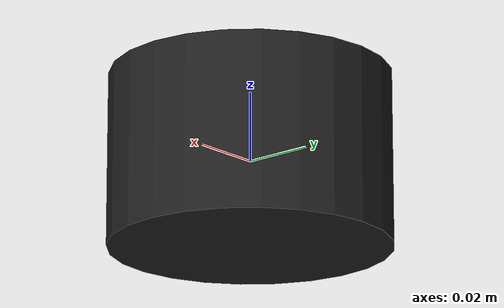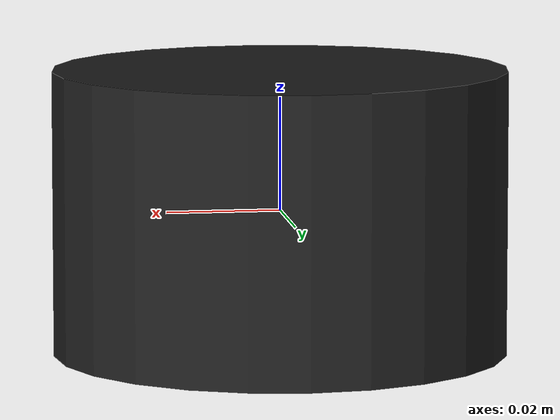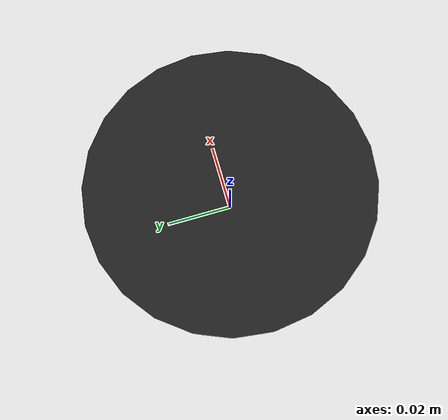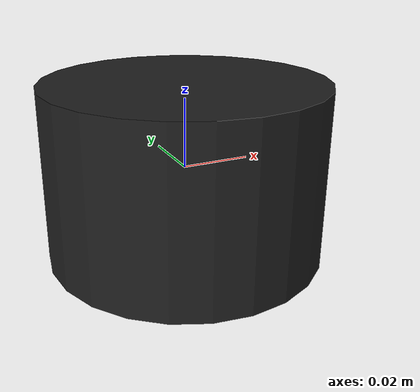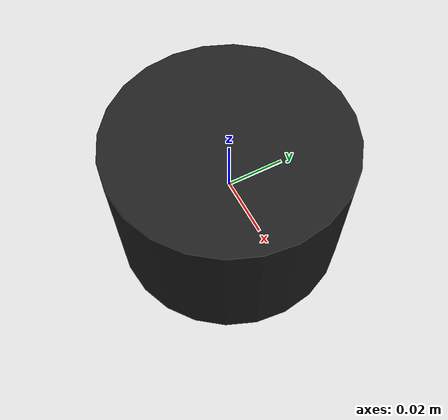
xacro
<?xml version="1.0"?>

<robot name="my_robot" xmlns:xacro="http://www.ros.org/wiki/xacro">

    <!-- setting up variables -->
    <xacro:property name="lidar_radius" value="0.04"/>
    <xacro:property name="lidar_length" value="0.05"/>

    <link name="laser_frame">
        <visual>
            <geometry>
                <cylinder radius="${lidar_radius}" length="${lidar_length}"/>
            </geometry>
            <origin xyz="0 0 0" rpy="0 0 0" />
            <material name="black"/>
        </visual>
        <collision>
            <geometry>
                <cylinder radius="${lidar_radius}" length="${lidar_length}"/>
            </geometry>
            <origin xyz="0 0 0" rpy="0 0 0" />
        </collision>
        <xacro:cylinder_inertia m="0.1" r="${lidar_radius}" h="${lidar_length}"
                                xyz="0 0 0" rpy="0 0 0"/>
    </link>

    <gazebo reference="laser_frame">
        <material>Gazebo/Black</material>

        <sensor name="laser" type="ray">
            <pose> 0 0 0 0 0 0 </pose>
            <visualize>true</visualize>
            <update_rate>10</update_rate>
            <ray>
                <scan>
                    <horizontal>
                        <samples>360</samples>
                        <min_angle>-3.14</min_angle>
                        <max_angle>3.14</max_angle>
                    </horizontal>
                </scan>
                <range>
                    <min>0.3</min>
                    <max>12</max>
                </range>
            </ray>
            <plugin name="laser_controller" filename="libgazebo_ros_ray_sensor.so">
                <ros>
                    <argument>~/out:=scan</argument>
                </ros>
                <output_type>sensor_msgs/LaserScan</output_type>
                <frame_name>laser_frame</frame_name>
            </plugin>
        </sensor>
    </gazebo>

</robot>
